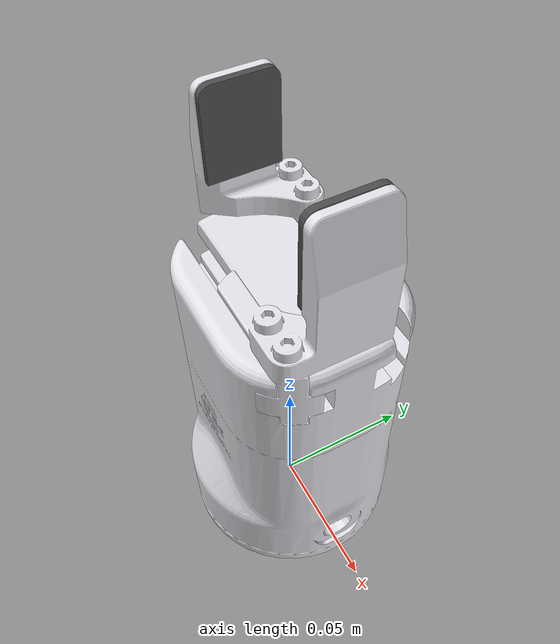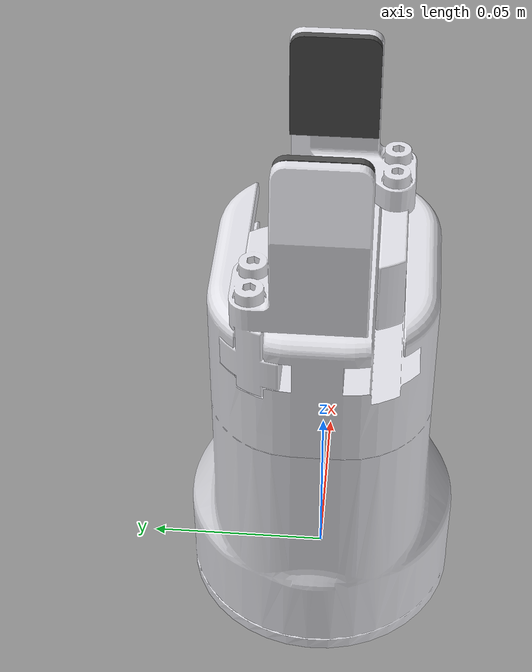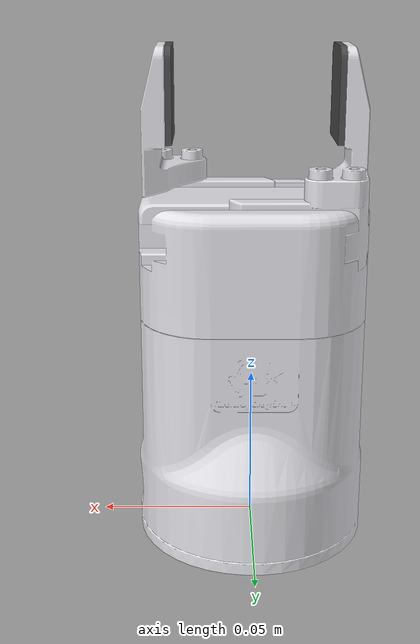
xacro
<?xml version="1.0" encoding="utf-8"?>
<robot
  name="crt_ctpm2f50h_gripper_visualization" xmlns:xacro="http://ros.org/wiki/xacro">
  <link
    name="base_link">
    <inertial>
      <origin
        xyz="-0.000205644649099209 -1.02779454716656E-05 0.0479185719773835"
        rpy="0 0 0" />
      <mass
        value="1.13758449010389" />
      <inertia
        ixx="0.000637430929438368"
        ixy="1.27894820114056E-07"
        ixz="-5.6255041852591E-06"
        iyy="0.000730154786314872"
        iyz="2.33656557614586E-07"
        izz="0.000732181377560946" />
    </inertial>
    <visual>
      <origin
        xyz="0 0 0"
        rpy="0 0 0" />
      <geometry>
        <mesh
          filename="package://crt_ctpm2f50h_gripper_visualization/meshes/base_link.STL" />
      </geometry>
      <material
        name="">
        <color
          rgba="0.890196078431372 0.890196078431372 0.913725490196078 1" />
      </material>
    </visual>
    <collision>
      <origin
        xyz="0 0 0"
        rpy="0 0 0" />
      <geometry>
        <mesh
          filename="package://crt_ctpm2f50h_gripper_visualization/meshes/base_link.STL" />
      </geometry>
    </collision>
  </link>
  <link
    name="Left_Link">
    <inertial>
      <origin
        xyz="-0.00966138172777936 -0.0228246772939132 0.0102156451251757"
        rpy="0 0 0" />
      <mass
        value="0.0447412817374153" />
      <inertia
        ixx="5.76340255937816E-06"
        ixy="-1.34634780522411E-07"
        ixz="2.51890630907923E-07"
        iyy="5.05355165438814E-06"
        iyz="8.45206289535499E-07"
        izz="7.39792611382058E-06" />
    </inertial>
    <visual>
      <origin
        xyz="0 0 0"
        rpy="0 0 0" />
      <geometry>
        <mesh
          filename="package://crt_ctpm2f50h_gripper_visualization/meshes/Left_Link.STL" />
      </geometry>
      <material
        name="">
        <color
          rgba="0.890196078431372 0.890196078431372 0.913725490196078 1" />
      </material>
    </visual>
    <collision>
      <origin
        xyz="0 0 0"
        rpy="0 0 0" />
      <geometry>
        <mesh
          filename="package://crt_ctpm2f50h_gripper_visualization/meshes/Left_Link.STL" />
      </geometry>
    </collision>
  </link>
  <joint
    name="Left_Joint"
    type="prismatic">
    <origin
      xyz="0.030444 0 0.13741"
      rpy="1.5708 0 0" />
    <parent
      link="base_link" />
    <child
      link="Left_Link" />
    <axis
      xyz="-1 0 0" />
    <limit
      lower="0"
      upper="0.025"
      effort="2"
      velocity="1000" />
  </joint>
  <link
    name="Left_Pad_Link">
    <inertial>
      <origin
        xyz="-3.46944695195361E-18 0.00164100460022655 -3.36293138167172E-16"
        rpy="0 0 0" />
      <mass
        value="0.00164972344172307" />
      <inertia
        ixx="1.85836483027E-07"
        ixy="-6.48704682399354E-25"
        ixz="-5.11441246026462E-22"
        iyy="7.23415984682111E-08"
        iyz="1.84639116636565E-23"
        izz="1.14594700186604E-07" />
    </inertial>
    <visual>
      <origin
        xyz="0 0 0"
        rpy="0 0 0" />
      <geometry>
        <mesh
          filename="package://crt_ctpm2f50h_gripper_visualization/meshes/Left_Pad_Link.STL" />
      </geometry>
      <material
        name="">
        <color
          rgba="0.298039215686275 0.298039215686275 0.298039215686275 1" />
      </material>
    </visual>
    <collision>
      <origin
        xyz="0 0 0"
        rpy="0 0 0" />
      <geometry>
        <mesh
          filename="package://crt_ctpm2f50h_gripper_visualization/meshes/Left_Pad_Link.STL" />
      </geometry>
    </collision>
  </link>
  <joint
    name="Left_Pad_Joint"
    type="fixed">
    <origin
      xyz="-0.0044445 0.0035361 0"
      rpy="0 0 0" />
    <parent
      link="Left_Link" />
    <child
      link="Left_Pad_Link" />
    <axis
      xyz="0 0 0" />
  </joint>
  <link
    name="Right_Link">
    <inertial>
      <origin
        xyz="-0.00966138172777944 -0.0228246772939132 0.0102156451251758"
        rpy="0 0 0" />
      <mass
        value="0.0447412817374153" />
      <inertia
        ixx="5.76340255937816E-06"
        ixy="-1.34634780522417E-07"
        ixz="2.51890630907912E-07"
        iyy="5.05355165438814E-06"
        iyz="8.45206289535497E-07"
        izz="7.39792611382059E-06" />
    </inertial>
    <visual>
      <origin
        xyz="0 0 0"
        rpy="0 0 0" />
      <geometry>
        <mesh
          filename="package://crt_ctpm2f50h_gripper_visualization/meshes/Right_Link.STL" />
      </geometry>
      <material
        name="">
        <color
          rgba="0.890196078431372 0.890196078431372 0.913725490196078 1" />
      </material>
    </visual>
    <collision>
      <origin
        xyz="0 0 0"
        rpy="0 0 0" />
      <geometry>
        <mesh
          filename="package://crt_ctpm2f50h_gripper_visualization/meshes/Right_Link.STL" />
      </geometry>
    </collision>
  </link>
  <joint
    name="Right_Joint"
    type="prismatic">
    <origin
      xyz="-0.030444 0 0.13741"
      rpy="1.5708 0 3.1416" />
    <parent
      link="base_link" />
    <child
      link="Right_Link" />
    <axis
      xyz="1 0 0" />
    <limit
      lower="0"
      upper="0.03"
      effort="2"
      velocity="1000" />
    <mimic
      joint="Left_Joint"
      multiplier="-1"
      offset="0" />
  </joint>
  <link
    name="Right_Pad_Link">
    <inertial>
      <origin
        xyz="-3.46944695195361E-18 0.00164100460022655 -1.52506542648385E-16"
        rpy="0 0 0" />
      <mass
        value="0.00164972344172307" />
      <inertia
        ixx="1.85836483027E-07"
        ixy="2.05791801616443E-24"
        ixz="-1.59095381499404E-23"
        iyy="7.23415984682111E-08"
        iyz="1.97284138738626E-23"
        izz="1.14594700186604E-07" />
    </inertial>
    <visual>
      <origin
        xyz="0 0 0"
        rpy="0 0 0" />
      <geometry>
        <mesh
          filename="package://crt_ctpm2f50h_gripper_visualization/meshes/Right_Pad_Link.STL" />
      </geometry>
      <material
        name="">
        <color
          rgba="0.298039215686275 0.298039215686275 0.298039215686275 1" />
      </material>
    </visual>
    <collision>
      <origin
        xyz="0 0 0"
        rpy="0 0 0" />
      <geometry>
        <mesh
          filename="package://crt_ctpm2f50h_gripper_visualization/meshes/Right_Pad_Link.STL" />
      </geometry>
    </collision>
  </link>
  <joint
    name="Right_Pad_Joint"
    type="fixed">
    <origin
      xyz="-0.0044444817368788 0.00353610269321061 0"
      rpy="0 0 0" />
    <parent
      link="Right_Link" />
    <child
      link="Right_Pad_Link" />
    <axis
      xyz="0 0 0" />
  </joint>
</robot>
